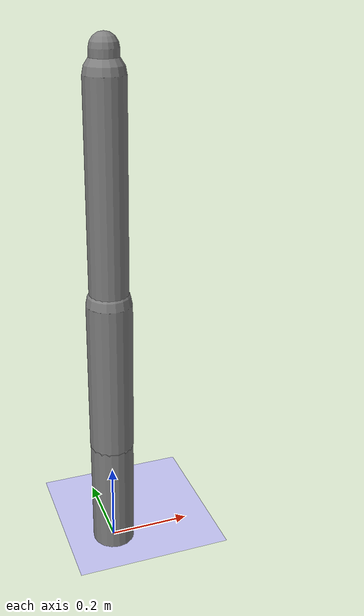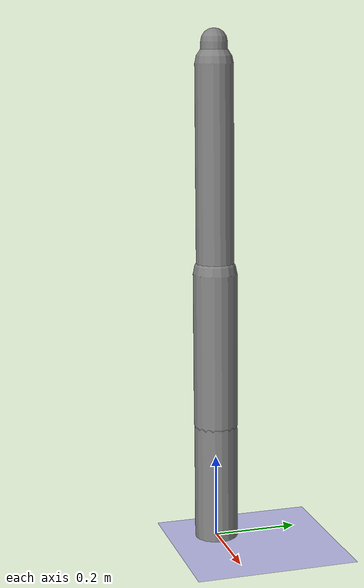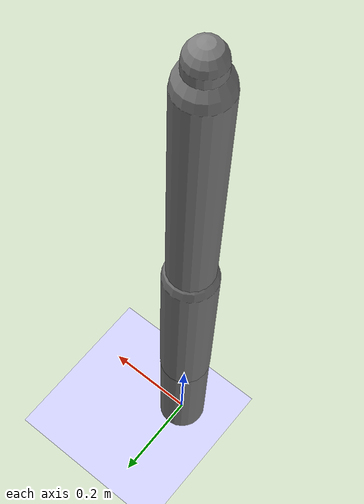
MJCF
<?xml version='1.0' encoding='UTF-8'?>
<mujoco model="robot_model">
  <worldbody>
    <light name="light" pos="0 -3 10" dir="0 0.5 -1" diffuse=".8 .8 .8" specular="0.1 0.1 0.1"/>
    <geom name="floor" type="plane" size="10.0 10.0 0.1" pos="0 0 0" rgba="0.8 0.8 1 1" contype="2" conaffinity="1"/>
    <body name="limb0" pos="0 0 0">
      <geom type="capsule" fromto="0 0 0 0 0 0.3732865228527221" size="0.052130038630251715" density="720.4481678445758" contype="1" conaffinity="2"/>
      <site type="sphere" size="0.01" name="limb0_site0" pos="0 0 0.2828005952503673"/>
      <site type="sphere" size="0.01" name="limb0_site1" pos="0 0 0.1629737164577456"/>
      <freejoint name="limb0_root"/>
      <body name="limb1" pos="0 0 0.2828005952503673">
        <geom type="capsule" fromto="0 0 0 0 0 0.372274530228085" size="0.052960072305996767" density="1069.5549891432568" contype="1" conaffinity="2"/>
        <site type="sphere" size="0.01" name="limb1_site0" pos="0 0 0.3650181458444618"/>
        <body name="limb2" pos="0 0 0.3650181458444618">
          <geom type="capsule" fromto="0 0 0 0 0 0.5" size="0.045329815490319995" density="1017.2531489540214" contype="1" conaffinity="2"/>
          <site type="sphere" size="0.01" name="limb2_site0" pos="0 0 0.35765999065426224"/>
          <body name="limb3" pos="0 0 0.35765999065426224">
            <geom type="capsule" fromto="0 0 0 0 0 0.19166066799868264" size="0.0314707546179414" density="956.2416848734547" contype="1" conaffinity="2"/>
            <joint name="joint_limb2_limb3_0" type="hinge" axis="0 1 0" range="-39.54825129765963 39.54825129765963" damping="5.0"/>
          </body>
          <joint name="joint_limb1_limb2_0" type="hinge" axis="0 1 0" range="-60.504894728636025 60.504894728636025" damping="5.0"/>
        </body>
        <joint name="joint_limb0_limb1_0" type="hinge" axis="0 1 0" range="-89.12714794406047 89.12714794406047" damping="5.0"/>
      </body>
      <body name="limb4" pos="0 0 0.1629737164577456">
        <geom type="capsule" fromto="0 0 0 0 0 0.43647014061798706" size="0.041248644928393044" density="789.216346642524" contype="1" conaffinity="2"/>
        <site type="sphere" size="0.01" name="limb4_site0" pos="0 0 0.3678912593167582"/>
        <body name="limb5" pos="0 0 0.3678912593167582">
          <geom type="capsule" fromto="0 0 0 0 0 0.4247975081430492" size="0.02" density="660.5970560437669" contype="1" conaffinity="2"/>
          <joint name="joint_limb4_limb5_0" type="hinge" axis="0 1 0" range="-116.19348413460918 116.19348413460918" damping="5.0"/>
        </body>
        <joint name="joint_limb0_limb4_0" type="hinge" axis="0 0 1" range="-45.82744000775369 45.82744000775369" damping="5.0"/>
      </body>
    </body>
  </worldbody>
  <actuator>
    <position name="position_actuator_joint_limb0_limb1_0" joint="joint_limb0_limb1_0" gear="1.8694611590103172" inheritrange="1" forcerange="-20.869594355142794 20.869594355142794" forcelimited="true" kp="100.0"/>
    <position name="position_actuator_joint_limb1_limb2_0" joint="joint_limb1_limb2_0" gear="1.855224638398584" inheritrange="1" forcerange="-18.401183504925072 18.401183504925072" forcelimited="true" kp="100.0"/>
    <position name="position_actuator_joint_limb2_limb3_0" joint="joint_limb2_limb3_0" gear="1.9577561249166682" inheritrange="1" forcerange="-3.4754816031092273 3.4754816031092273" forcelimited="true" kp="100.0"/>
    <position name="position_actuator_joint_limb0_limb4_0" joint="joint_limb0_limb4_0" gear="0.7342032220860385" inheritrange="1" forcerange="-10.36646920093445 10.36646920093445" forcelimited="true" kp="100.0"/>
    <position name="position_actuator_joint_limb4_limb5_0" joint="joint_limb4_limb5_0" gear="1.5911780312269714" inheritrange="1" forcerange="-1.8738714550406819 1.8738714550406819" forcelimited="true" kp="100.0"/>
  </actuator>
</mujoco>
